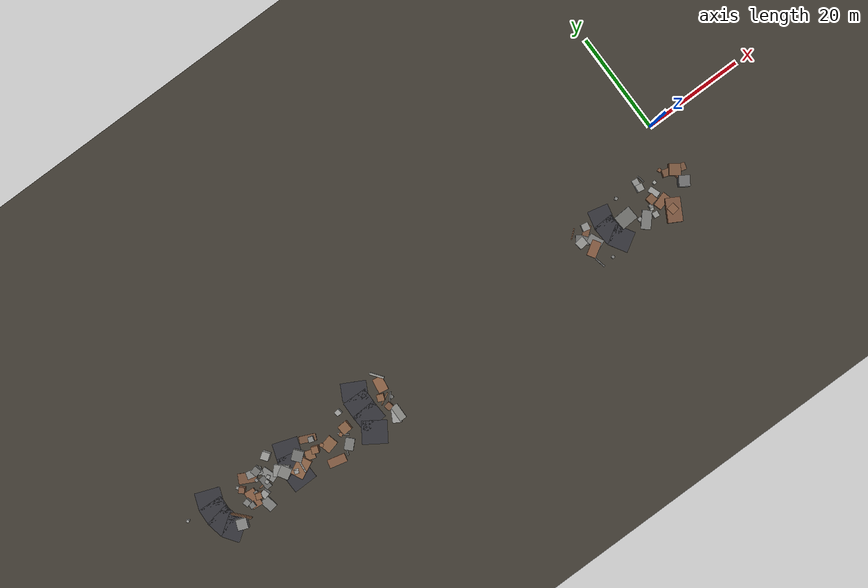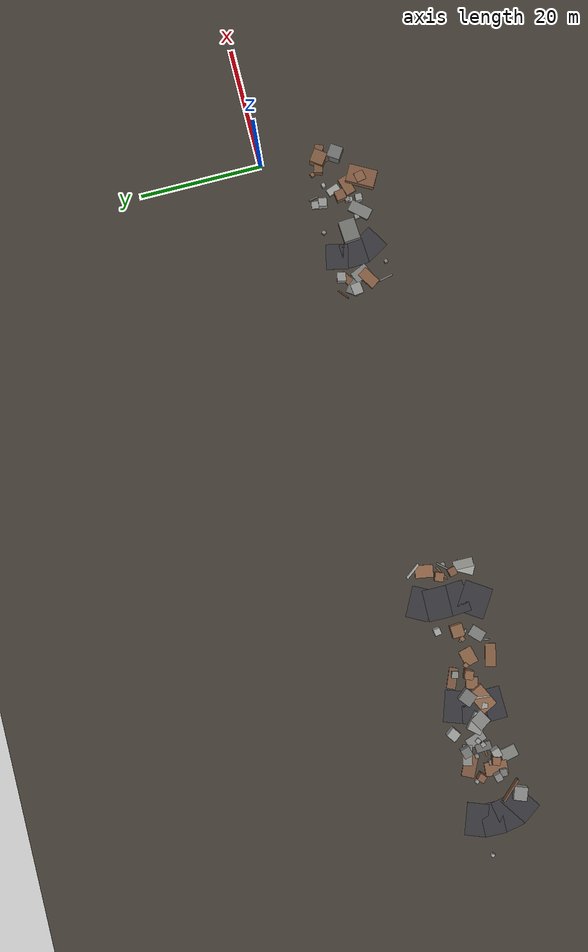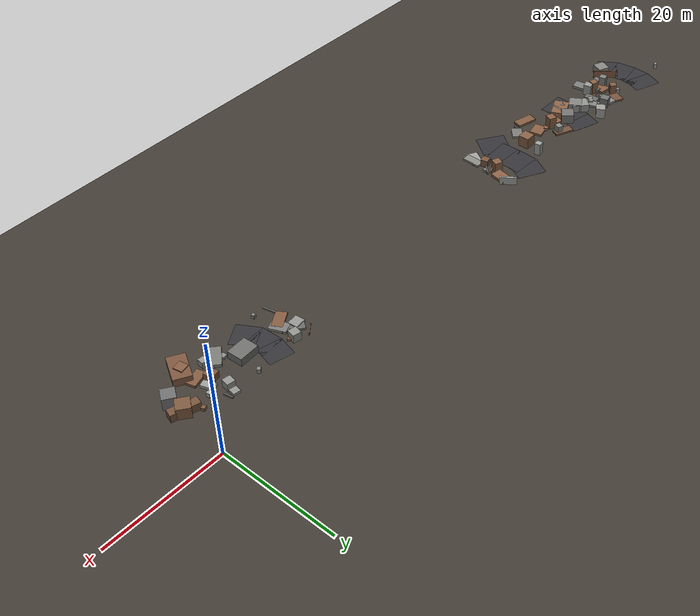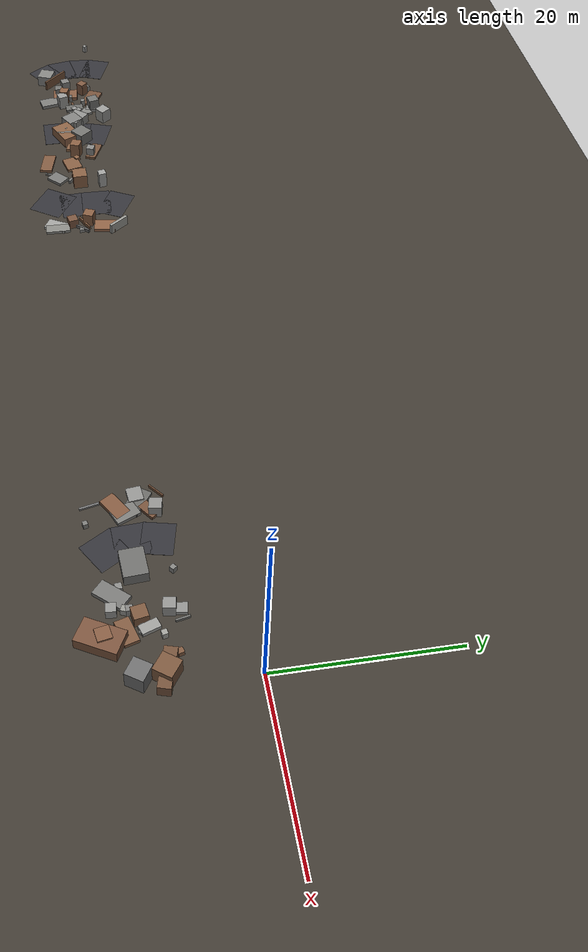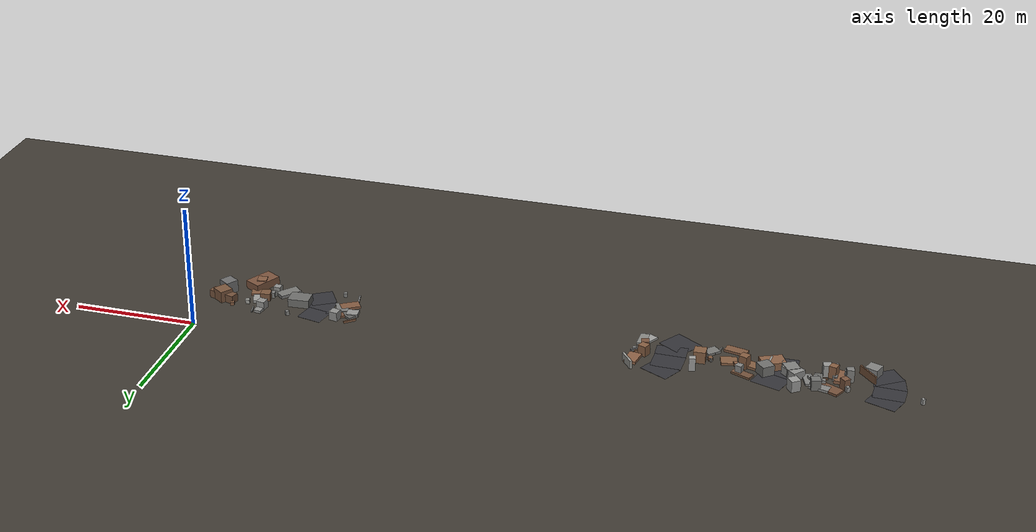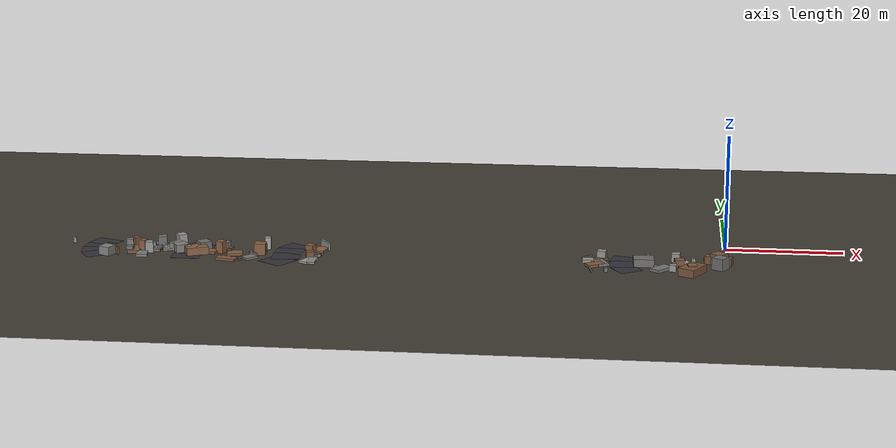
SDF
<sdf version="1.6">
 <world name="navitas_arena">
  <model name="ground_plane">
   <static>true</static>
   <link name="link">
    <collision name="collision">
     <geometry><plane><normal>0 0 1</normal><size>400 400</size></plane></geometry>
     <surface><friction><ode><mu>0.620</mu><mu2>0.620</mu2></ode></friction></surface>
    </collision>
    <visual name="visual">
     <cast_shadows>false</cast_shadows>
     <geometry><plane><normal>0 0 1</normal><size>400 400</size></plane></geometry>
     <material><ambient>0.250 0.230 0.200 1</ambient><diffuse>0.250 0.230 0.200 1</diffuse></material>
    </visual>
   </link>
  </model>
  <model name="road_kolay_1_7">
   <static>true</static>
   <pose>-107.212 -13.926 0.040 0 0 2.177</pose>
   <link name="link">
    <collision name="col"><geometry><box><size>3.514 4.920 0.020</size></box></geometry></collision>
    <visual name="vis">
     <geometry><box><size>3.514 4.920 0.020</size></box></geometry>
     <material><ambient>0.20 0.20 0.22 1</ambient><diffuse>0.20 0.20 0.22 1</diffuse></material>
    </visual>
   </link>
  </model>
  <model name="road_kolay_1_8">
   <static>true</static>
   <pose>-108.184 -11.639 0.040 0 0 1.756</pose>
   <link name="link">
    <collision name="col"><geometry><box><size>3.368 4.920 0.020</size></box></geometry></collision>
    <visual name="vis">
     <geometry><box><size>3.368 4.920 0.020</size></box></geometry>
     <material><ambient>0.20 0.20 0.22 1</ambient><diffuse>0.20 0.20 0.22 1</diffuse></material>
    </visual>
   </link>
  </model>
  <model name="road_kolay_1_9">
   <static>true</static>
   <pose>-108.360 -9.213 0.040 0 0 1.529</pose>
   <link name="link">
    <collision name="col"><geometry><box><size>3.328 4.920 0.020</size></box></geometry></collision>
    <visual name="vis">
     <geometry><box><size>3.328 4.920 0.020</size></box></geometry>
     <material><ambient>0.20 0.20 0.22 1</ambient><diffuse>0.20 0.20 0.22 1</diffuse></material>
    </visual>
   </link>
  </model>
  <model name="road_kolay_1_10">
   <static>true</static>
   <pose>-107.875 -6.833 0.040 0 0 1.214</pose>
   <link name="link">
    <collision name="col"><geometry><box><size>3.390 4.920 0.020</size></box></geometry></collision>
    <visual name="vis">
     <geometry><box><size>3.390 4.920 0.020</size></box></geometry>
     <material><ambient>0.20 0.20 0.22 1</ambient><diffuse>0.20 0.20 0.22 1</diffuse></material>
    </visual>
   </link>
  </model>
  <model name="road_kolay_2_3">
   <static>true</static>
   <pose>-91.690 -13.690 0.040 0 0 1.588</pose>
   <link name="link">
    <collision name="col"><geometry><box><size>3.520 4.920 0.020</size></box></geometry></collision>
    <visual name="vis">
     <geometry><box><size>3.520 4.920 0.020</size></box></geometry>
     <material><ambient>0.20 0.20 0.22 1</ambient><diffuse>0.20 0.20 0.22 1</diffuse></material>
    </visual>
   </link>
  </model>
  <model name="road_kolay_2_4">
   <static>true</static>
   <pose>-91.406 -10.910 0.040 0 0 1.365</pose>
   <link name="link">
    <collision name="col"><geometry><box><size>3.903 4.920 0.020</size></box></geometry></collision>
    <visual name="vis">
     <geometry><box><size>3.903 4.920 0.020</size></box></geometry>
     <material><ambient>0.20 0.20 0.22 1</ambient><diffuse>0.20 0.20 0.22 1</diffuse></material>
    </visual>
   </link>
  </model>
  <model name="road_kolay_2_5">
   <static>true</static>
   <pose>-90.652 -8.137 0.040 0 0 1.240</pose>
   <link name="link">
    <collision name="col"><geometry><box><size>3.656 4.920 0.020</size></box></geometry></collision>
    <visual name="vis">
     <geometry><box><size>3.656 4.920 0.020</size></box></geometry>
     <material><ambient>0.20 0.20 0.22 1</ambient><diffuse>0.20 0.20 0.22 1</diffuse></material>
    </visual>
   </link>
  </model>
  <model name="road_kolay_3_4">
   <static>true</static>
   <pose>-75.523 -15.241 0.040 0 0 0.986</pose>
   <link name="link">
    <collision name="col"><geometry><box><size>4.452 4.920 0.020</size></box></geometry></collision>
    <visual name="vis">
     <geometry><box><size>4.452 4.920 0.020</size></box></geometry>
     <material><ambient>0.20 0.20 0.22 1</ambient><diffuse>0.20 0.20 0.22 1</diffuse></material>
    </visual>
   </link>
  </model>
  <model name="road_kolay_3_5">
   <static>true</static>
   <pose>-74.625 -12.340 0.040 0 0 1.628</pose>
   <link name="link">
    <collision name="col"><geometry><box><size>3.745 4.920 0.020</size></box></geometry></collision>
    <visual name="vis">
     <geometry><box><size>3.745 4.920 0.020</size></box></geometry>
     <material><ambient>0.20 0.20 0.22 1</ambient><diffuse>0.20 0.20 0.22 1</diffuse></material>
    </visual>
   </link>
  </model>
  <model name="road_kolay_3_6">
   <static>true</static>
   <pose>-74.675 -9.460 0.040 0 0 1.549</pose>
   <link name="link">
    <collision name="col"><geometry><box><size>3.821 4.920 0.020</size></box></geometry></collision>
    <visual name="vis">
     <geometry><box><size>3.821 4.920 0.020</size></box></geometry>
     <material><ambient>0.20 0.20 0.22 1</ambient><diffuse>0.20 0.20 0.22 1</diffuse></material>
    </visual>
   </link>
  </model>
  <model name="road_kolay_3_7">
   <static>true</static>
   <pose>-74.025 -6.833 0.040 0 0 1.083</pose>
   <link name="link">
    <collision name="col"><geometry><box><size>3.542 4.920 0.020</size></box></geometry></collision>
    <visual name="vis">
     <geometry><box><size>3.542 4.920 0.020</size></box></geometry>
     <material><ambient>0.20 0.20 0.22 1</ambient><diffuse>0.20 0.20 0.22 1</diffuse></material>
    </visual>
   </link>
  </model>
  <model name="blk_kolay_1_0_4">
   <static>true</static>
   <pose>-105.429 -14.249 0.757 0 0 1.196</pose>
   <link name="link">
    <collision name="col"><geometry><box><size>2.048 2.048 1.514</size></box></geometry></collision>
    <visual name="vis">
     <geometry><box><size>2.048 2.048 1.514</size></box></geometry>
     <material><ambient>0.51 0.51 0.50 1</ambient><diffuse>0.51 0.51 0.50 1</diffuse></material>
    </visual>
   </link>
  </model>
  <model name="blk_kolay_1_0_6">
   <static>true</static>
   <pose>-104.711 -12.966 0.675 0 0 2.299</pose>
   <link name="link">
    <collision name="col"><geometry><box><size>3.969 0.243 1.350</size></box></geometry></collision>
    <visual name="vis">
     <geometry><box><size>3.969 0.243 1.350</size></box></geometry>
     <material><ambient>0.47 0.33 0.23 1</ambient><diffuse>0.47 0.33 0.23 1</diffuse></material>
    </visual>
   </link>
  </model>
  <model name="blk_kolay_2_0_0">
   <static>true</static>
   <pose>-89.935 -11.892 0.675 0 0 1.464</pose>
   <link name="link">
    <collision name="col"><geometry><box><size>3.359 0.303 1.350</size></box></geometry></collision>
    <visual name="vis">
     <geometry><box><size>3.359 0.303 1.350</size></box></geometry>
     <material><ambient>0.60 0.60 0.58 1</ambient><diffuse>0.60 0.60 0.58 1</diffuse></material>
    </visual>
   </link>
  </model>
  <model name="blk_kolay_2_0_1">
   <static>true</static>
   <pose>-89.517 -10.175 0.845 0 0 0.684</pose>
   <link name="link">
    <collision name="col"><geometry><box><size>2.082 2.082 1.689</size></box></geometry></collision>
    <visual name="vis">
     <geometry><box><size>2.082 2.082 1.689</size></box></geometry>
     <material><ambient>0.44 0.44 0.43 1</ambient><diffuse>0.44 0.44 0.43 1</diffuse></material>
    </visual>
   </link>
  </model>
  <model name="blk_kolay_2_0_2">
   <static>true</static>
   <pose>-89.940 -10.680 0.675 0 0 2.735</pose>
   <link name="link">
    <collision name="col"><geometry><box><size>0.860 0.860 1.350</size></box></geometry></collision>
    <visual name="vis">
     <geometry><box><size>0.860 0.860 1.350</size></box></geometry>
     <material><ambient>0.51 0.51 0.50 1</ambient><diffuse>0.51 0.51 0.50 1</diffuse></material>
    </visual>
   </link>
  </model>
  <model name="blk_kolay_2_0_3">
   <static>true</static>
   <pose>-93.704 -10.649 0.675 0 0 2.432</pose>
   <link name="link">
    <collision name="col"><geometry><box><size>2.945 2.202 1.350</size></box></geometry></collision>
    <visual name="vis">
     <geometry><box><size>2.945 2.202 1.350</size></box></geometry>
     <material><ambient>0.56 0.56 0.55 1</ambient><diffuse>0.56 0.56 0.55 1</diffuse></material>
    </visual>
   </link>
  </model>
  <model name="blk_kolay_2_0_4">
   <static>true</static>
   <pose>-93.326 -11.235 0.710 0 0 0.537</pose>
   <link name="link">
    <collision name="col"><geometry><box><size>2.193 2.193 1.421</size></box></geometry></collision>
    <visual name="vis">
     <geometry><box><size>2.193 2.193 1.421</size></box></geometry>
     <material><ambient>0.50 0.50 0.49 1</ambient><diffuse>0.50 0.50 0.49 1</diffuse></material>
    </visual>
   </link>
  </model>
  <model name="blk_kolay_2_0_5">
   <static>true</static>
   <pose>-91.399 -12.397 0.675 0 0 1.242</pose>
   <link name="link">
    <collision name="col"><geometry><box><size>0.926 0.926 1.350</size></box></geometry></collision>
    <visual name="vis">
     <geometry><box><size>0.926 0.926 1.350</size></box></geometry>
     <material><ambient>0.60 0.60 0.59 1</ambient><diffuse>0.60 0.60 0.59 1</diffuse></material>
    </visual>
   </link>
  </model>
  <model name="blk_kolay_2_0_6">
   <static>true</static>
   <pose>-90.309 -12.327 0.675 0 0 0.445</pose>
   <link name="link">
    <collision name="col"><geometry><box><size>3.712 2.554 1.350</size></box></geometry></collision>
    <visual name="vis">
     <geometry><box><size>3.712 2.554 1.350</size></box></geometry>
     <material><ambient>0.54 0.38 0.27 1</ambient><diffuse>0.54 0.38 0.27 1</diffuse></material>
    </visual>
   </link>
  </model>
  <model name="deb_kolay_1">
   <static>true</static>
   <pose>-68.991 -11.819 0.218 0 0 1.576</pose>
   <link name="link">
    <collision name="col"><geometry><box><size>0.619 0.619 0.435</size></box></geometry></collision>
    <visual name="vis">
     <geometry><box><size>0.619 0.619 0.435</size></box></geometry>
     <material><ambient>0.50 0.50 0.49 1</ambient><diffuse>0.50 0.50 0.49 1</diffuse></material>
    </visual>
   </link>
  </model>
  <model name="deb_kolay_19">
   <static>true</static>
   <pose>-101.062 -11.717 0.269 0 0 1.484</pose>
   <link name="link">
    <collision name="col"><geometry><box><size>3.487 2.040 0.538</size></box></geometry></collision>
    <visual name="vis">
     <geometry><box><size>3.487 2.040 0.538</size></box></geometry>
     <material><ambient>0.52 0.36 0.26 1</ambient><diffuse>0.52 0.36 0.26 1</diffuse></material>
    </visual>
   </link>
  </model>
  <model name="deb_kolay_20">
   <static>true</static>
   <pose>-85.729 -9.196 0.720 0 0 2.853</pose>
   <link name="link">
    <collision name="col"><geometry><box><size>1.026 1.026 1.440</size></box></geometry></collision>
    <visual name="vis">
     <geometry><box><size>1.026 1.026 1.440</size></box></geometry>
     <material><ambient>0.52 0.52 0.51 1</ambient><diffuse>0.52 0.52 0.51 1</diffuse></material>
    </visual>
   </link>
  </model>
  <model name="deb_kolay_21">
   <static>true</static>
   <pose>-101.826 -12.596 0.617 0 0 1.550</pose>
   <link name="link">
    <collision name="col"><geometry><box><size>1.088 1.088 1.234</size></box></geometry></collision>
    <visual name="vis">
     <geometry><box><size>1.088 1.088 1.234</size></box></geometry>
     <material><ambient>0.44 0.44 0.43 1</ambient><diffuse>0.44 0.44 0.43 1</diffuse></material>
    </visual>
   </link>
  </model>
  <model name="deb_kolay_24">
   <static>true</static>
   <pose>-78.649 -8.206 1.075 0 0 1.714</pose>
   <link name="link">
    <collision name="col"><geometry><box><size>1.015 1.015 2.150</size></box></geometry></collision>
    <visual name="vis">
     <geometry><box><size>1.015 1.015 2.150</size></box></geometry>
     <material><ambient>0.62 0.62 0.61 1</ambient><diffuse>0.62 0.62 0.61 1</diffuse></material>
    </visual>
   </link>
  </model>
  <model name="deb_kolay_29">
   <static>true</static>
   <pose>-69.306 -8.698 0.240 0 0 1.402</pose>
   <link name="link">
    <collision name="col"><geometry><box><size>2.846 1.948 0.480</size></box></geometry></collision>
    <visual name="vis">
     <geometry><box><size>2.846 1.948 0.480</size></box></geometry>
     <material><ambient>0.55 0.38 0.27 1</ambient><diffuse>0.55 0.38 0.27 1</diffuse></material>
    </visual>
   </link>
  </model>
  <model name="deb_kolay_34">
   <static>true</static>
   <pose>-97.450 -7.867 0.864 0 0 0.264</pose>
   <link name="link">
    <collision name="col"><geometry><box><size>1.443 1.443 1.729</size></box></geometry></collision>
    <visual name="vis">
     <geometry><box><size>1.443 1.443 1.729</size></box></geometry>
     <material><ambient>0.44 0.44 0.43 1</ambient><diffuse>0.44 0.44 0.43 1</diffuse></material>
    </visual>
   </link>
  </model>
  <model name="deb_kolay_42">
   <static>true</static>
   <pose>-99.674 -11.896 1.047 0 0 2.818</pose>
   <link name="link">
    <collision name="col"><geometry><box><size>1.184 1.184 2.094</size></box></geometry></collision>
    <visual name="vis">
     <geometry><box><size>1.184 1.184 2.094</size></box></geometry>
     <material><ambient>0.53 0.37 0.26 1</ambient><diffuse>0.53 0.37 0.26 1</diffuse></material>
    </visual>
   </link>
  </model>
  <model name="deb_kolay_54">
   <static>true</static>
   <pose>-80.614 -14.220 0.190 0 0 0.769</pose>
   <link name="link">
    <collision name="col"><geometry><box><size>2.327 1.762 0.381</size></box></geometry></collision>
    <visual name="vis">
     <geometry><box><size>2.327 1.762 0.381</size></box></geometry>
     <material><ambient>0.47 0.47 0.46 1</ambient><diffuse>0.47 0.47 0.46 1</diffuse></material>
    </visual>
   </link>
  </model>
  <model name="deb_kolay_55">
   <static>true</static>
   <pose>-99.359 -14.209 0.235 0 0 1.755</pose>
   <link name="link">
    <collision name="col"><geometry><box><size>2.547 1.817 0.471</size></box></geometry></collision>
    <visual name="vis">
     <geometry><box><size>2.547 1.817 0.471</size></box></geometry>
     <material><ambient>0.48 0.48 0.47 1</ambient><diffuse>0.48 0.48 0.47 1</diffuse></material>
    </visual>
   </link>
  </model>
  <model name="deb_kolay_58">
   <static>true</static>
   <pose>-99.687 -7.926 0.183 0 0 2.676</pose>
   <link name="link">
    <collision name="col"><geometry><box><size>3.559 2.013 0.366</size></box></geometry></collision>
    <visual name="vis">
     <geometry><box><size>3.559 2.013 0.366</size></box></geometry>
     <material><ambient>0.46 0.32 0.23 1</ambient><diffuse>0.46 0.32 0.23 1</diffuse></material>
    </visual>
   </link>
  </model>
  <model name="deb_kolay_61">
   <static>true</static>
   <pose>-96.414 -10.082 0.354 0 0 2.195</pose>
   <link name="link">
    <collision name="col"><geometry><box><size>0.702 0.702 0.708</size></box></geometry></collision>
    <visual name="vis">
     <geometry><box><size>0.702 0.702 0.708</size></box></geometry>
     <material><ambient>0.58 0.58 0.57 1</ambient><diffuse>0.58 0.58 0.57 1</diffuse></material>
    </visual>
   </link>
  </model>
  <model name="deb_kolay_62">
   <static>true</static>
   <pose>-97.975 -10.760 0.113 0 0 0.092</pose>
   <link name="link">
    <collision name="col"><geometry><box><size>2.109 0.298 0.225</size></box></geometry></collision>
    <visual name="vis">
     <geometry><box><size>2.109 0.298 0.225</size></box></geometry>
     <material><ambient>0.45 0.32 0.23 1</ambient><diffuse>0.45 0.32 0.23 1</diffuse></material>
    </visual>
   </link>
  </model>
  <model name="deb_kolay_64">
   <static>true</static>
   <pose>-70.646 -10.700 0.864 0 0 2.759</pose>
   <link name="link">
    <collision name="col"><geometry><box><size>1.345 1.345 1.728</size></box></geometry></collision>
    <visual name="vis">
     <geometry><box><size>1.345 1.345 1.728</size></box></geometry>
     <material><ambient>0.53 0.37 0.26 1</ambient><diffuse>0.53 0.37 0.26 1</diffuse></material>
    </visual>
   </link>
  </model>
  <model name="deb_kolay_68">
   <static>true</static>
   <pose>-83.698 -11.997 0.192 0 0 0.244</pose>
   <link name="link">
    <collision name="col"><geometry><box><size>2.574 2.113 0.384</size></box></geometry></collision>
    <visual name="vis">
     <geometry><box><size>2.574 2.113 0.384</size></box></geometry>
     <material><ambient>0.52 0.37 0.26 1</ambient><diffuse>0.52 0.37 0.26 1</diffuse></material>
    </visual>
   </link>
  </model>
  <model name="deb_kolay_70">
   <static>true</static>
   <pose>-113.364 -7.772 0.469 0 0 2.271</pose>
   <link name="link">
    <collision name="col"><geometry><box><size>0.486 0.486 0.937</size></box></geometry></collision>
    <visual name="vis">
     <geometry><box><size>0.486 0.486 0.937</size></box></geometry>
     <material><ambient>0.62 0.62 0.61 1</ambient><diffuse>0.62 0.62 0.61 1</diffuse></material>
    </visual>
   </link>
  </model>
  <model name="deb_kolay_71">
   <static>true</static>
   <pose>-70.277 -11.340 0.233 0 0 0.485</pose>
   <link name="link">
    <collision name="col"><geometry><box><size>2.514 0.238 0.465</size></box></geometry></collision>
    <visual name="vis">
     <geometry><box><size>2.514 0.238 0.465</size></box></geometry>
     <material><ambient>0.51 0.36 0.25 1</ambient><diffuse>0.51 0.36 0.25 1</diffuse></material>
    </visual>
   </link>
  </model>
  <model name="deb_kolay_72">
   <static>true</static>
   <pose>-94.354 -6.631 0.922 0 0 2.203</pose>
   <link name="link">
    <collision name="col"><geometry><box><size>1.542 1.542 1.844</size></box></geometry></collision>
    <visual name="vis">
     <geometry><box><size>1.542 1.542 1.844</size></box></geometry>
     <material><ambient>0.60 0.60 0.59 1</ambient><diffuse>0.60 0.60 0.59 1</diffuse></material>
    </visual>
   </link>
  </model>
  <model name="deb_kolay_81">
   <static>true</static>
   <pose>-84.878 -11.277 0.283 0 0 0.592</pose>
   <link name="link">
    <collision name="col"><geometry><box><size>0.677 0.677 0.565</size></box></geometry></collision>
    <visual name="vis">
     <geometry><box><size>0.677 0.677 0.565</size></box></geometry>
     <material><ambient>0.54 0.38 0.27 1</ambient><diffuse>0.54 0.38 0.27 1</diffuse></material>
    </visual>
   </link>
  </model>
  <model name="deb_kolay_83">
   <static>true</static>
   <pose>-87.701 -11.456 0.223 0 0 2.828</pose>
   <link name="link">
    <collision name="col"><geometry><box><size>1.860 1.821 0.446</size></box></geometry></collision>
    <visual name="vis">
     <geometry><box><size>1.860 1.821 0.446</size></box></geometry>
     <material><ambient>0.52 0.37 0.26 1</ambient><diffuse>0.52 0.37 0.26 1</diffuse></material>
    </visual>
   </link>
  </model>
  <model name="deb_kolay_94">
   <static>true</static>
   <pose>-98.121 -7.955 0.201 0 0 2.902</pose>
   <link name="link">
    <collision name="col"><geometry><box><size>3.124 1.444 0.401</size></box></geometry></collision>
    <visual name="vis">
     <geometry><box><size>3.124 1.444 0.401</size></box></geometry>
     <material><ambient>0.52 0.52 0.51 1</ambient><diffuse>0.52 0.52 0.51 1</diffuse></material>
    </visual>
   </link>
  </model>
  <model name="deb_kolay_95">
   <static>true</static>
   <pose>-98.611 -12.251 0.965 0 0 1.832</pose>
   <link name="link">
    <collision name="col"><geometry><box><size>1.308 1.308 1.930</size></box></geometry></collision>
    <visual name="vis">
     <geometry><box><size>1.308 1.308 1.930</size></box></geometry>
     <material><ambient>0.59 0.59 0.58 1</ambient><diffuse>0.59 0.59 0.58 1</diffuse></material>
    </visual>
   </link>
  </model>
  <model name="deb_kolay_96">
   <static>true</static>
   <pose>-102.149 -11.586 1.038 0 0 0.248</pose>
   <link name="link">
    <collision name="col"><geometry><box><size>1.126 1.126 2.075</size></box></geometry></collision>
    <visual name="vis">
     <geometry><box><size>1.126 1.126 2.075</size></box></geometry>
     <material><ambient>0.49 0.49 0.48 1</ambient><diffuse>0.49 0.49 0.48 1</diffuse></material>
    </visual>
   </link>
  </model>
  <model name="deb_kolay_97">
   <static>true</static>
   <pose>-98.521 -9.301 0.442 0 0 0.080</pose>
   <link name="link">
    <collision name="col"><geometry><box><size>0.596 0.596 0.883</size></box></geometry></collision>
    <visual name="vis">
     <geometry><box><size>0.596 0.596 0.883</size></box></geometry>
     <material><ambient>0.51 0.51 0.50 1</ambient><diffuse>0.51 0.51 0.50 1</diffuse></material>
    </visual>
   </link>
  </model>
  <model name="deb_kolay_103">
   <static>true</static>
   <pose>-96.158 -9.834 0.168 0 0 1.902</pose>
   <link name="link">
    <collision name="col"><geometry><box><size>3.037 1.529 0.336</size></box></geometry></collision>
    <visual name="vis">
     <geometry><box><size>3.037 1.529 0.336</size></box></geometry>
     <material><ambient>0.51 0.51 0.50 1</ambient><diffuse>0.51 0.51 0.50 1</diffuse></material>
    </visual>
   </link>
  </model>
  <model name="deb_kolay_107">
   <static>true</static>
   <pose>-80.387 -12.017 0.240 0 0 2.398</pose>
   <link name="link">
    <collision name="col"><geometry><box><size>2.174 0.290 0.480</size></box></geometry></collision>
    <visual name="vis">
     <geometry><box><size>2.174 0.290 0.480</size></box></geometry>
     <material><ambient>0.48 0.48 0.47 1</ambient><diffuse>0.48 0.48 0.47 1</diffuse></material>
    </visual>
   </link>
  </model>
  <model name="deb_kolay_110">
   <static>true</static>
   <pose>-80.825 -11.813 0.269 0 0 2.094</pose>
   <link name="link">
    <collision name="col"><geometry><box><size>0.692 0.692 0.537</size></box></geometry></collision>
    <visual name="vis">
     <geometry><box><size>0.692 0.692 0.537</size></box></geometry>
     <material><ambient>0.53 0.37 0.26 1</ambient><diffuse>0.53 0.37 0.26 1</diffuse></material>
    </visual>
   </link>
  </model>
  <model name="deb_kolay_111">
   <static>true</static>
   <pose>-97.518 -10.643 0.199 0 0 1.617</pose>
   <link name="link">
    <collision name="col"><geometry><box><size>2.465 1.278 0.399</size></box></geometry></collision>
    <visual name="vis">
     <geometry><box><size>2.465 1.278 0.399</size></box></geometry>
     <material><ambient>0.41 0.41 0.40 1</ambient><diffuse>0.41 0.41 0.40 1</diffuse></material>
    </visual>
   </link>
  </model>
  <model name="deb_kolay_115">
   <static>true</static>
   <pose>-69.679 -14.951 0.175 0 0 1.554</pose>
   <link name="link">
    <collision name="col"><geometry><box><size>3.149 1.413 0.350</size></box></geometry></collision>
    <visual name="vis">
     <geometry><box><size>3.149 1.413 0.350</size></box></geometry>
     <material><ambient>0.53 0.53 0.51 1</ambient><diffuse>0.53 0.53 0.51 1</diffuse></material>
    </visual>
   </link>
  </model>
  <model name="deb_kolay_119">
   <static>true</static>
   <pose>-86.299 -8.735 0.174 0 0 2.728</pose>
   <link name="link">
    <collision name="col"><geometry><box><size>3.253 1.385 0.348</size></box></geometry></collision>
    <visual name="vis">
     <geometry><box><size>3.253 1.385 0.348</size></box></geometry>
     <material><ambient>0.45 0.32 0.23 1</ambient><diffuse>0.45 0.32 0.23 1</diffuse></material>
    </visual>
   </link>
  </model>
  <model name="deb_kolay_132">
   <static>true</static>
   <pose>-97.194 -10.712 0.234 0 0 2.002</pose>
   <link name="link">
    <collision name="col"><geometry><box><size>0.707 0.707 0.469</size></box></geometry></collision>
    <visual name="vis">
     <geometry><box><size>0.707 0.707 0.469</size></box></geometry>
     <material><ambient>0.57 0.57 0.56 1</ambient><diffuse>0.57 0.57 0.56 1</diffuse></material>
    </visual>
   </link>
  </model>
  <model name="deb_kolay_136">
   <static>true</static>
   <pose>-86.194 -11.210 1.044 0 0 1.187</pose>
   <link name="link">
    <collision name="col"><geometry><box><size>1.333 1.333 2.088</size></box></geometry></collision>
    <visual name="vis">
     <geometry><box><size>1.333 1.333 2.088</size></box></geometry>
     <material><ambient>0.53 0.37 0.26 1</ambient><diffuse>0.53 0.37 0.26 1</diffuse></material>
    </visual>
   </link>
  </model>
  <model name="deb_kolay_146">
   <static>true</static>
   <pose>-101.695 -9.129 0.861 0 0 0.778</pose>
   <link name="link">
    <collision name="col"><geometry><box><size>1.114 1.114 1.722</size></box></geometry></collision>
    <visual name="vis">
     <geometry><box><size>1.114 1.114 1.722</size></box></geometry>
     <material><ambient>0.49 0.34 0.25 1</ambient><diffuse>0.49 0.34 0.25 1</diffuse></material>
    </visual>
   </link>
  </model>
  <model name="deb_kolay_149">
   <static>true</static>
   <pose>-84.301 -15.382 0.200 0 0 2.906</pose>
   <link name="link">
    <collision name="col"><geometry><box><size>3.520 1.628 0.400</size></box></geometry></collision>
    <visual name="vis">
     <geometry><box><size>3.520 1.628 0.400</size></box></geometry>
     <material><ambient>0.50 0.35 0.25 1</ambient><diffuse>0.50 0.35 0.25 1</diffuse></material>
    </visual>
   </link>
  </model>
  <model name="deb_kolay_153">
   <static>true</static>
   <pose>-97.114 -8.380 0.379 0 0 3.099</pose>
   <link name="link">
    <collision name="col"><geometry><box><size>0.413 0.413 0.757</size></box></geometry></collision>
    <visual name="vis">
     <geometry><box><size>0.413 0.413 0.757</size></box></geometry>
     <material><ambient>0.57 0.57 0.56 1</ambient><diffuse>0.57 0.57 0.56 1</diffuse></material>
    </visual>
   </link>
  </model>
  <model name="deb_kolay_154">
   <static>true</static>
   <pose>-99.997 -11.166 0.368 0 0 1.580</pose>
   <link name="link">
    <collision name="col"><geometry><box><size>0.727 0.727 0.736</size></box></geometry></collision>
    <visual name="vis">
     <geometry><box><size>0.727 0.727 0.736</size></box></geometry>
     <material><ambient>0.44 0.44 0.43 1</ambient><diffuse>0.44 0.44 0.43 1</diffuse></material>
    </visual>
   </link>
  </model>
  <model name="deb_kolay_159">
   <static>true</static>
   <pose>-69.451 -11.922 0.222 0 0 0.855</pose>
   <link name="link">
    <collision name="col"><geometry><box><size>2.693 0.263 0.444</size></box></geometry></collision>
    <visual name="vis">
     <geometry><box><size>2.693 0.263 0.444</size></box></geometry>
     <material><ambient>0.40 0.40 0.40 1</ambient><diffuse>0.40 0.40 0.40 1</diffuse></material>
    </visual>
   </link>
  </model>
  <model name="deb_kolay_160">
   <static>true</static>
   <pose>-70.305 -15.062 0.170 0 0 1.064</pose>
   <link name="link">
    <collision name="col"><geometry><box><size>2.933 1.776 0.341</size></box></geometry></collision>
    <visual name="vis">
     <geometry><box><size>2.933 1.776 0.341</size></box></geometry>
     <material><ambient>0.62 0.62 0.61 1</ambient><diffuse>0.62 0.62 0.61 1</diffuse></material>
    </visual>
   </link>
  </model>
  <model name="deb_kolay_161">
   <static>true</static>
   <pose>-70.382 -12.916 0.622 0 0 1.790</pose>
   <link name="link">
    <collision name="col"><geometry><box><size>1.240 1.240 1.245</size></box></geometry></collision>
    <visual name="vis">
     <geometry><box><size>1.240 1.240 1.245</size></box></geometry>
     <material><ambient>0.47 0.33 0.24 1</ambient><diffuse>0.47 0.33 0.24 1</diffuse></material>
    </visual>
   </link>
  </model>
  <model name="deb_kolay_163">
   <static>true</static>
   <pose>-81.623 -14.742 0.116 0 0 1.204</pose>
   <link name="link">
    <collision name="col"><geometry><box><size>2.393 0.241 0.232</size></box></geometry></collision>
    <visual name="vis">
     <geometry><box><size>2.393 0.241 0.232</size></box></geometry>
     <material><ambient>0.44 0.44 0.43 1</ambient><diffuse>0.44 0.44 0.43 1</diffuse></material>
    </visual>
   </link>
  </model>
  <model name="deb_kolay_165">
   <static>true</static>
   <pose>-102.211 -8.343 0.411 0 0 2.239</pose>
   <link name="link">
    <collision name="col"><geometry><box><size>0.554 0.554 0.821</size></box></geometry></collision>
    <visual name="vis">
     <geometry><box><size>0.554 0.554 0.821</size></box></geometry>
     <material><ambient>0.56 0.56 0.55 1</ambient><diffuse>0.56 0.56 0.55 1</diffuse></material>
    </visual>
   </link>
  </model>
  <model name="chic_kolay_2">
   <static>true</static>
   <pose>-79.309 -11.244 0.966 0 0 0.039</pose>
   <link name="link">
    <collision name="col"><geometry><box><size>1.887 1.887 1.932</size></box></geometry></collision>
    <visual name="vis">
     <geometry><box><size>1.887 1.887 1.932</size></box></geometry>
     <material><ambient>0.52 0.37 0.26 1</ambient><diffuse>0.52 0.37 0.26 1</diffuse></material>
    </visual>
   </link>
  </model>
  <model name="chic_kolay_3">
   <static>true</static>
   <pose>-68.809 -6.947 0.675 0 0 2.211</pose>
   <link name="link">
    <collision name="col"><geometry><box><size>2.836 0.368 1.350</size></box></geometry></collision>
    <visual name="vis">
     <geometry><box><size>2.836 0.368 1.350</size></box></geometry>
     <material><ambient>0.61 0.61 0.59 1</ambient><diffuse>0.61 0.61 0.59 1</diffuse></material>
    </visual>
   </link>
  </model>
  <model name="road_orta_1_8">
   <static>true</static>
   <pose>-16.725 -13.690 0.040 0 0 2.114</pose>
   <link name="link">
    <collision name="col"><geometry><box><size>3.960 4.100 0.020</size></box></geometry></collision>
    <visual name="vis">
     <geometry><box><size>3.960 4.100 0.020</size></box></geometry>
     <material><ambient>0.20 0.20 0.22 1</ambient><diffuse>0.20 0.20 0.22 1</diffuse></material>
    </visual>
   </link>
  </model>
  <model name="road_orta_1_9">
   <static>true</static>
   <pose>-17.594 -10.910 0.040 0 0 1.624</pose>
   <link name="link">
    <collision name="col"><geometry><box><size>3.844 4.100 0.020</size></box></geometry></collision>
    <visual name="vis">
     <geometry><box><size>3.844 4.100 0.020</size></box></geometry>
     <material><ambient>0.20 0.20 0.22 1</ambient><diffuse>0.20 0.20 0.22 1</diffuse></material>
    </visual>
   </link>
  </model>
  <model name="road_orta_1_10">
   <static>true</static>
   <pose>-17.375 -8.137 0.040 0 0 1.347</pose>
   <link name="link">
    <collision name="col"><geometry><box><size>3.574 4.100 0.020</size></box></geometry></collision>
    <visual name="vis">
     <geometry><box><size>3.574 4.100 0.020</size></box></geometry>
     <material><ambient>0.20 0.20 0.22 1</ambient><diffuse>0.20 0.20 0.22 1</diffuse></material>
    </visual>
   </link>
  </model>
  <model name="blk_orta_2_0_1">
   <static>true</static>
   <pose>-1.171 -11.955 1.025 0 0 0.987</pose>
   <link name="link">
    <collision name="col"><geometry><box><size>2.104 2.104 2.050</size></box></geometry></collision>
    <visual name="vis">
     <geometry><box><size>2.104 2.104 2.050</size></box></geometry>
     <material><ambient>0.43 0.43 0.43 1</ambient><diffuse>0.43 0.43 0.43 1</diffuse></material>
    </visual>
   </link>
  </model>
  <model name="blk_orta_2_0_3">
   <static>true</static>
   <pose>-1.314 -9.187 0.966 0 0 0.942</pose>
   <link name="link">
    <collision name="col"><geometry><box><size>2.194 2.194 1.932</size></box></geometry></collision>
    <visual name="vis">
     <geometry><box><size>2.194 2.194 1.932</size></box></geometry>
     <material><ambient>0.48 0.34 0.24 1</ambient><diffuse>0.48 0.34 0.24 1</diffuse></material>
    </visual>
   </link>
  </model>
  <model name="blk_orta_2_0_4">
   <static>true</static>
   <pose>-1.378 -9.161 0.675 0 0 2.862</pose>
   <link name="link">
    <collision name="col"><geometry><box><size>4.585 1.406 1.350</size></box></geometry></collision>
    <visual name="vis">
     <geometry><box><size>4.585 1.406 1.350</size></box></geometry>
     <material><ambient>0.45 0.32 0.23 1</ambient><diffuse>0.45 0.32 0.23 1</diffuse></material>
    </visual>
   </link>
  </model>
  <model name="blk_orta_2_0_5">
   <static>true</static>
   <pose>-1.511 -10.919 0.675 0 0 1.722</pose>
   <link name="link">
    <collision name="col"><geometry><box><size>3.642 0.310 1.350</size></box></geometry></collision>
    <visual name="vis">
     <geometry><box><size>3.642 0.310 1.350</size></box></geometry>
     <material><ambient>0.50 0.35 0.25 1</ambient><diffuse>0.50 0.35 0.25 1</diffuse></material>
    </visual>
   </link>
  </model>
  <model name="deb_orta_4">
   <static>true</static>
   <pose>-7.980 -11.099 0.645 0 0 0.175</pose>
   <link name="link">
    <collision name="col"><geometry><box><size>1.583 1.583 1.290</size></box></geometry></collision>
    <visual name="vis">
     <geometry><box><size>1.583 1.583 1.290</size></box></geometry>
     <material><ambient>0.48 0.34 0.24 1</ambient><diffuse>0.48 0.34 0.24 1</diffuse></material>
    </visual>
   </link>
  </model>
  <model name="deb_orta_13">
   <static>true</static>
   <pose>-6.713 -10.274 0.233 0 0 1.911</pose>
   <link name="link">
    <collision name="col"><geometry><box><size>2.096 1.154 0.466</size></box></geometry></collision>
    <visual name="vis">
     <geometry><box><size>2.096 1.154 0.466</size></box></geometry>
     <material><ambient>0.61 0.61 0.60 1</ambient><diffuse>0.61 0.61 0.60 1</diffuse></material>
    </visual>
   </link>
  </model>
  <model name="deb_orta_19">
   <static>true</static>
   <pose>-10.940 -13.630 0.257 0 0 0.847</pose>
   <link name="link">
    <collision name="col"><geometry><box><size>3.597 1.886 0.513</size></box></geometry></collision>
    <visual name="vis">
     <geometry><box><size>3.597 1.886 0.513</size></box></geometry>
     <material><ambient>0.47 0.47 0.46 1</ambient><diffuse>0.47 0.47 0.46 1</diffuse></material>
    </visual>
   </link>
  </model>
  <model name="deb_orta_35">
   <static>true</static>
   <pose>-7.257 -6.880 0.150 0 0 1.771</pose>
   <link name="link">
    <collision name="col"><geometry><box><size>1.574 0.234 0.300</size></box></geometry></collision>
    <visual name="vis">
     <geometry><box><size>1.574 0.234 0.300</size></box></geometry>
     <material><ambient>0.41 0.41 0.40 1</ambient><diffuse>0.41 0.41 0.40 1</diffuse></material>
    </visual>
   </link>
  </model>
  <model name="deb_orta_62">
   <static>true</static>
   <pose>-11.843 -12.853 0.241 0 0 0.100</pose>
   <link name="link">
    <collision name="col"><geometry><box><size>0.758 0.758 0.483</size></box></geometry></collision>
    <visual name="vis">
     <geometry><box><size>0.758 0.758 0.483</size></box></geometry>
     <material><ambient>0.54 0.54 0.53 1</ambient><diffuse>0.54 0.54 0.53 1</diffuse></material>
    </visual>
   </link>
  </model>
  <model name="deb_orta_72">
   <static>true</static>
   <pose>-5.892 -14.877 0.769 0 0 1.753</pose>
   <link name="link">
    <collision name="col"><geometry><box><size>1.557 1.557 1.537</size></box></geometry></collision>
    <visual name="vis">
     <geometry><box><size>1.557 1.557 1.537</size></box></geometry>
     <material><ambient>0.52 0.36 0.26 1</ambient><diffuse>0.52 0.36 0.26 1</diffuse></material>
    </visual>
   </link>
  </model>
  <model name="deb_orta_77">
   <static>true</static>
   <pose>-8.497 -8.061 0.712 0 0 2.986</pose>
   <link name="link">
    <collision name="col"><geometry><box><size>1.349 1.349 1.424</size></box></geometry></collision>
    <visual name="vis">
     <geometry><box><size>1.349 1.349 1.424</size></box></geometry>
     <material><ambient>0.57 0.57 0.56 1</ambient><diffuse>0.57 0.57 0.56 1</diffuse></material>
    </visual>
   </link>
  </model>
  <model name="deb_orta_85">
   <static>true</static>
   <pose>-23.296 -9.909 0.263 0 0 0.111</pose>
   <link name="link">
    <collision name="col"><geometry><box><size>1.847 1.646 0.526</size></box></geometry></collision>
    <visual name="vis">
     <geometry><box><size>1.847 1.646 0.526</size></box></geometry>
     <material><ambient>0.57 0.57 0.56 1</ambient><diffuse>0.57 0.57 0.56 1</diffuse></material>
    </visual>
   </link>
  </model>
  <model name="deb_orta_88">
   <static>true</static>
   <pose>-6.496 -12.566 0.217 0 0 0.283</pose>
   <link name="link">
    <collision name="col"><geometry><box><size>2.963 1.619 0.434</size></box></geometry></collision>
    <visual name="vis">
     <geometry><box><size>2.963 1.619 0.434</size></box></geometry>
     <material><ambient>0.50 0.35 0.25 1</ambient><diffuse>0.50 0.35 0.25 1</diffuse></material>
    </visual>
   </link>
  </model>
  <model name="deb_orta_97">
   <static>true</static>
   <pose>-8.436 -7.258 0.216 0 0 1.448</pose>
   <link name="link">
    <collision name="col"><geometry><box><size>2.061 1.214 0.433</size></box></geometry></collision>
    <visual name="vis">
     <geometry><box><size>2.061 1.214 0.433</size></box></geometry>
     <material><ambient>0.56 0.56 0.55 1</ambient><diffuse>0.56 0.56 0.55 1</diffuse></material>
    </visual>
   </link>
  </model>
  <model name="deb_orta_110">
   <static>true</static>
   <pose>-22.430 -9.793 0.179 0 0 2.536</pose>
   <link name="link">
    <collision name="col"><geometry><box><size>3.486 1.862 0.358</size></box></geometry></collision>
    <visual name="vis">
     <geometry><box><size>3.486 1.862 0.358</size></box></geometry>
     <material><ambient>0.41 0.41 0.40 1</ambient><diffuse>0.41 0.41 0.40 1</diffuse></material>
    </visual>
   </link>
  </model>
  <model name="deb_orta_113">
   <static>true</static>
   <pose>-21.062 -11.170 0.212 0 0 1.990</pose>
   <link name="link">
    <collision name="col"><geometry><box><size>2.816 1.900 0.424</size></box></geometry></collision>
    <visual name="vis">
     <geometry><box><size>2.816 1.900 0.424</size></box></geometry>
     <material><ambient>0.48 0.48 0.47 1</ambient><diffuse>0.48 0.48 0.47 1</diffuse></material>
    </visual>
   </link>
  </model>
  <model name="deb_orta_114">
   <static>true</static>
   <pose>-9.020 -13.866 0.551 0 0 1.490</pose>
   <link name="link">
    <collision name="col"><geometry><box><size>1.108 1.108 1.103</size></box></geometry></collision>
    <visual name="vis">
     <geometry><box><size>1.108 1.108 1.103</size></box></geometry>
     <material><ambient>0.57 0.57 0.56 1</ambient><diffuse>0.57 0.57 0.56 1</diffuse></material>
    </visual>
   </link>
  </model>
  <model name="deb_orta_122">
   <static>true</static>
   <pose>-21.135 -8.588 0.186 0 0 0.644</pose>
   <link name="link">
    <collision name="col"><geometry><box><size>2.186 1.243 0.373</size></box></geometry></collision>
    <visual name="vis">
     <geometry><box><size>2.186 1.243 0.373</size></box></geometry>
     <material><ambient>0.46 0.32 0.23 1</ambient><diffuse>0.46 0.32 0.23 1</diffuse></material>
    </visual>
   </link>
  </model>
  <model name="deb_orta_125">
   <static>true</static>
   <pose>-7.352 -10.971 0.180 0 0 2.889</pose>
   <link name="link">
    <collision name="col"><geometry><box><size>2.528 0.254 0.360</size></box></geometry></collision>
    <visual name="vis">
     <geometry><box><size>2.528 0.254 0.360</size></box></geometry>
     <material><ambient>0.52 0.52 0.51 1</ambient><diffuse>0.52 0.52 0.51 1</diffuse></material>
    </visual>
   </link>
  </model>
  <model name="deb_orta_149">
   <static>true</static>
   <pose>-22.657 -14.891 0.111 0 0 1.785</pose>
   <link name="link">
    <collision name="col"><geometry><box><size>2.224 0.264 0.222</size></box></geometry></collision>
    <visual name="vis">
     <geometry><box><size>2.224 0.264 0.222</size></box></geometry>
     <material><ambient>0.44 0.44 0.44 1</ambient><diffuse>0.44 0.44 0.44 1</diffuse></material>
    </visual>
   </link>
  </model>
  <model name="deb_orta_173">
   <static>true</static>
   <pose>-20.110 -15.511 0.336 0 0 1.809</pose>
   <link name="link">
    <collision name="col"><geometry><box><size>0.549 0.549 0.671</size></box></geometry></collision>
    <visual name="vis">
     <geometry><box><size>0.549 0.549 0.671</size></box></geometry>
     <material><ambient>0.48 0.48 0.47 1</ambient><diffuse>0.48 0.48 0.47 1</diffuse></material>
    </visual>
   </link>
  </model>
  <model name="deb_orta_174">
   <static>true</static>
   <pose>-13.162 -7.076 0.358 0 0 2.264</pose>
   <link name="link">
    <collision name="col"><geometry><box><size>0.576 0.576 0.716</size></box></geometry></collision>
    <visual name="vis">
     <geometry><box><size>0.576 0.576 0.716</size></box></geometry>
     <material><ambient>0.51 0.51 0.50 1</ambient><diffuse>0.51 0.51 0.50 1</diffuse></material>
    </visual>
   </link>
  </model>
  <model name="deb_orta_175">
   <static>true</static>
   <pose>-5.637 -8.917 0.376 0 0 1.770</pose>
   <link name="link">
    <collision name="col"><geometry><box><size>0.617 0.617 0.753</size></box></geometry></collision>
    <visual name="vis">
     <geometry><box><size>0.617 0.617 0.753</size></box></geometry>
     <material><ambient>0.62 0.62 0.60 1</ambient><diffuse>0.62 0.62 0.60 1</diffuse></material>
    </visual>
   </link>
  </model>
  <model name="deb_orta_190">
   <static>true</static>
   <pose>-8.803 -12.055 0.463 0 0 1.628</pose>
   <link name="link">
    <collision name="col"><geometry><box><size>0.746 0.746 0.927</size></box></geometry></collision>
    <visual name="vis">
     <geometry><box><size>0.746 0.746 0.927</size></box></geometry>
     <material><ambient>0.50 0.50 0.49 1</ambient><diffuse>0.50 0.50 0.49 1</diffuse></material>
    </visual>
   </link>
  </model>
  <model name="deb_orta_191">
   <static>true</static>
   <pose>-3.471 -7.647 0.286 0 0 0.290</pose>
   <link name="link">
    <collision name="col"><geometry><box><size>0.645 0.645 0.573</size></box></geometry></collision>
    <visual name="vis">
     <geometry><box><size>0.645 0.645 0.573</size></box></geometry>
     <material><ambient>0.50 0.35 0.25 1</ambient><diffuse>0.50 0.35 0.25 1</diffuse></material>
    </visual>
   </link>
  </model>
  <model name="deb_orta_192">
   <static>true</static>
   <pose>-22.054 -12.179 0.215 0 0 0.560</pose>
   <link name="link">
    <collision name="col"><geometry><box><size>3.121 1.769 0.431</size></box></geometry></collision>
    <visual name="vis">
     <geometry><box><size>3.121 1.769 0.431</size></box></geometry>
     <material><ambient>0.51 0.35 0.25 1</ambient><diffuse>0.51 0.35 0.25 1</diffuse></material>
    </visual>
   </link>
  </model>
  <model name="deb_orta_196">
   <static>true</static>
   <pose>-21.004 -7.921 0.743 0 0 1.380</pose>
   <link name="link">
    <collision name="col"><geometry><box><size>1.408 1.408 1.486</size></box></geometry></collision>
    <visual name="vis">
     <geometry><box><size>1.408 1.408 1.486</size></box></geometry>
     <material><ambient>0.56 0.56 0.55 1</ambient><diffuse>0.56 0.56 0.55 1</diffuse></material>
    </visual>
   </link>
  </model>
  <model name="deb_orta_215">
   <static>true</static>
   <pose>-8.924 -12.516 0.395 0 0 1.178</pose>
   <link name="link">
    <collision name="col"><geometry><box><size>0.730 0.730 0.790</size></box></geometry></collision>
    <visual name="vis">
     <geometry><box><size>0.730 0.730 0.790</size></box></geometry>
     <material><ambient>0.58 0.58 0.56 1</ambient><diffuse>0.58 0.58 0.56 1</diffuse></material>
    </visual>
   </link>
  </model>
  <model name="deb_orta_226">
   <static>true</static>
   <pose>-23.600 -7.575 0.183 0 0 0.694</pose>
   <link name="link">
    <collision name="col"><geometry><box><size>2.100 0.163 0.366</size></box></geometry></collision>
    <visual name="vis">
     <geometry><box><size>2.100 0.163 0.366</size></box></geometry>
     <material><ambient>0.49 0.34 0.24 1</ambient><diffuse>0.49 0.34 0.24 1</diffuse></material>
    </visual>
   </link>
  </model>
  <model name="chic_orta_1">
   <static>true</static>
   <pose>-5.826 -15.179 0.675 0 0 1.068</pose>
   <link name="link">
    <collision name="col"><geometry><box><size>4.662 2.843 1.350</size></box></geometry></collision>
    <visual name="vis">
     <geometry><box><size>4.662 2.843 1.350</size></box></geometry>
     <material><ambient>0.48 0.33 0.24 1</ambient><diffuse>0.48 0.33 0.24 1</diffuse></material>
    </visual>
   </link>
  </model>
  <model name="chic_orta_3">
   <static>true</static>
   <pose>-13.930 -11.049 0.675 0 0 0.065</pose>
   <link name="link">
    <collision name="col"><geometry><box><size>3.452 2.656 1.350</size></box></geometry></collision>
    <visual name="vis">
     <geometry><box><size>3.452 2.656 1.350</size></box></geometry>
     <material><ambient>0.43 0.43 0.42 1</ambient><diffuse>0.43 0.43 0.42 1</diffuse></material>
    </visual>
   </link>
  </model>
 </world>
</sdf>
